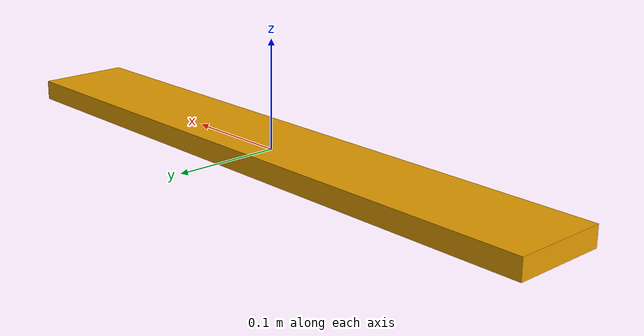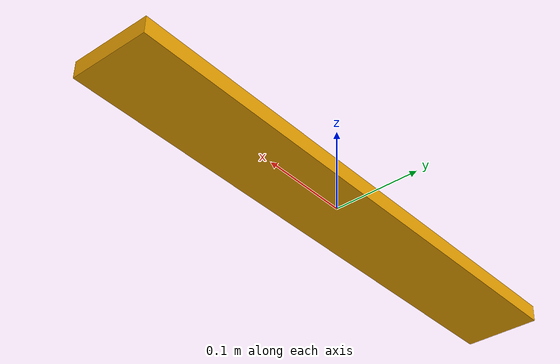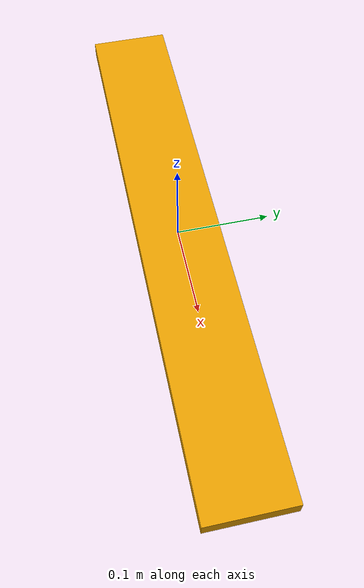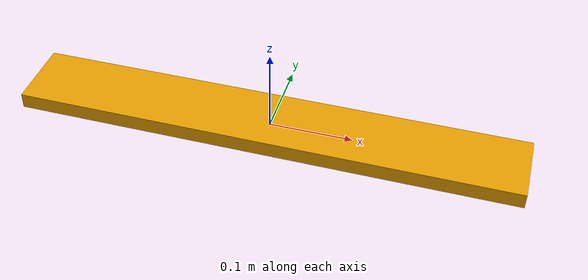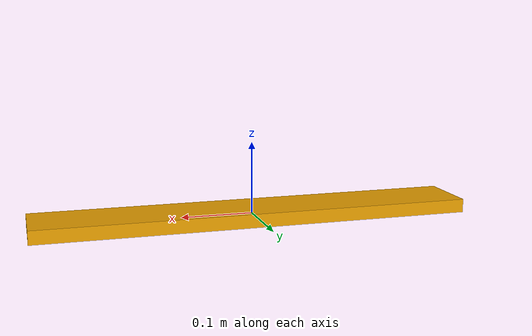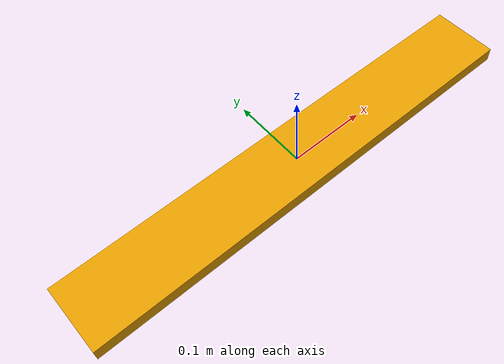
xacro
<?xml version="1.0"?>
<robot name="footer_simple_test"
       xmlns:xacro="http://ros.org/wiki/xacro">

  <!-- Link -->
  <link name="footer" >
    <visual>
      <geometry>
	<box size=".6096 .0889 .01905" />
      </geometry>
    </visual>

    <collision>
      <geometry>
	<box size=".6096 .0889 .01905" />
      </geometry>
    </collision>

    <inertial>
      <mass value=".001" />
      <inertia ixx=".010" ixy="0.0" ixz="0.0" iyy=".010" iyz="0.0" izz=".010" />
    </inertial>
  </link>

  <!-- Adjust friction on block -->
  <gazebo reference="footer_simple_test">
    <mu1>1</mu1>
    <mu2>1</mu2>
    <minDepth>0</minDepth>
  </gazebo>

  <gazebo>
    <static>true</static>
  </gazebo>

</robot>
